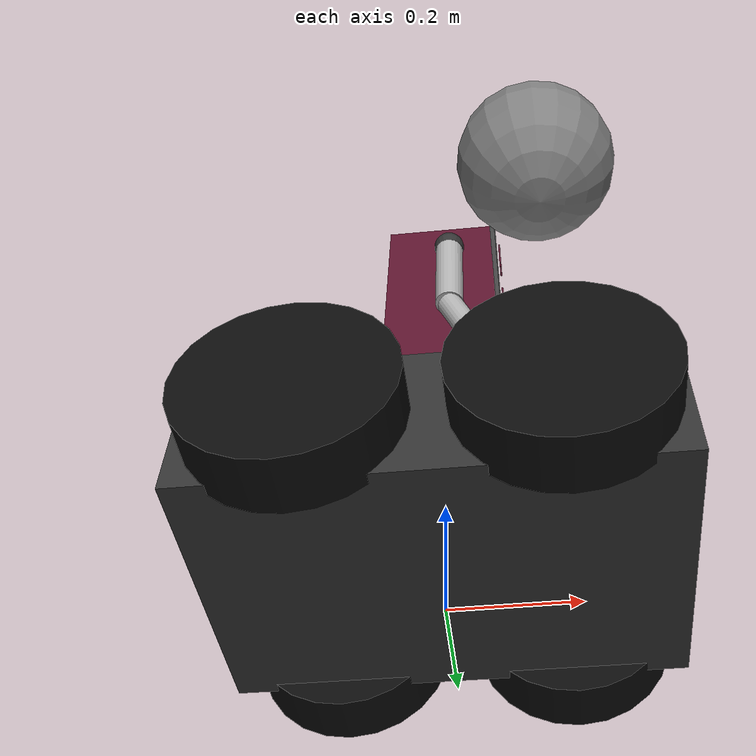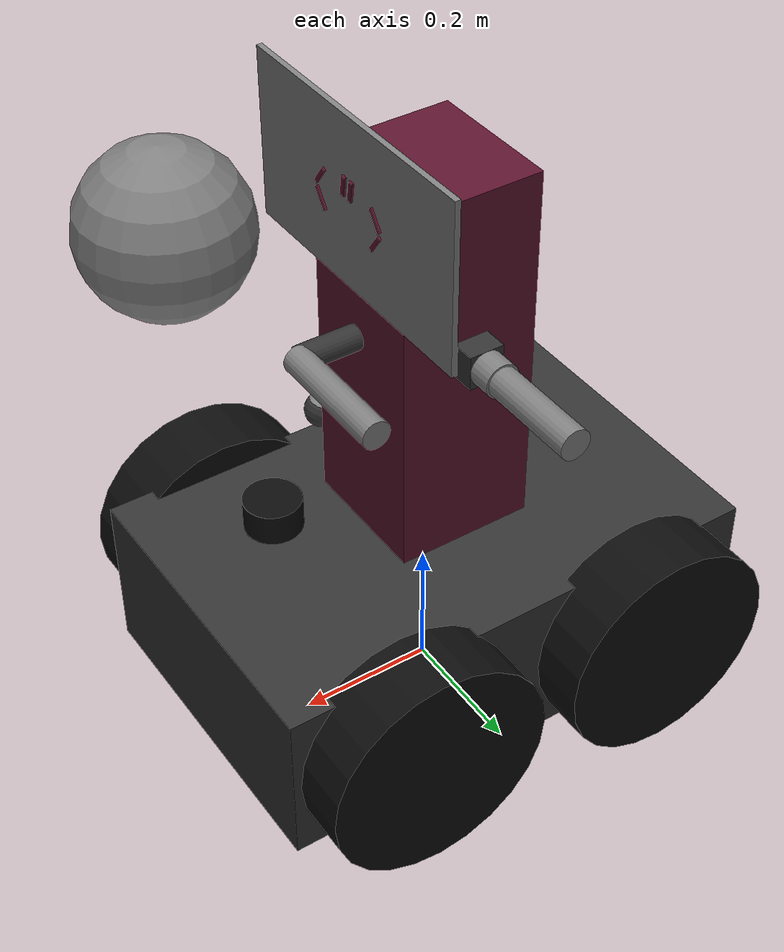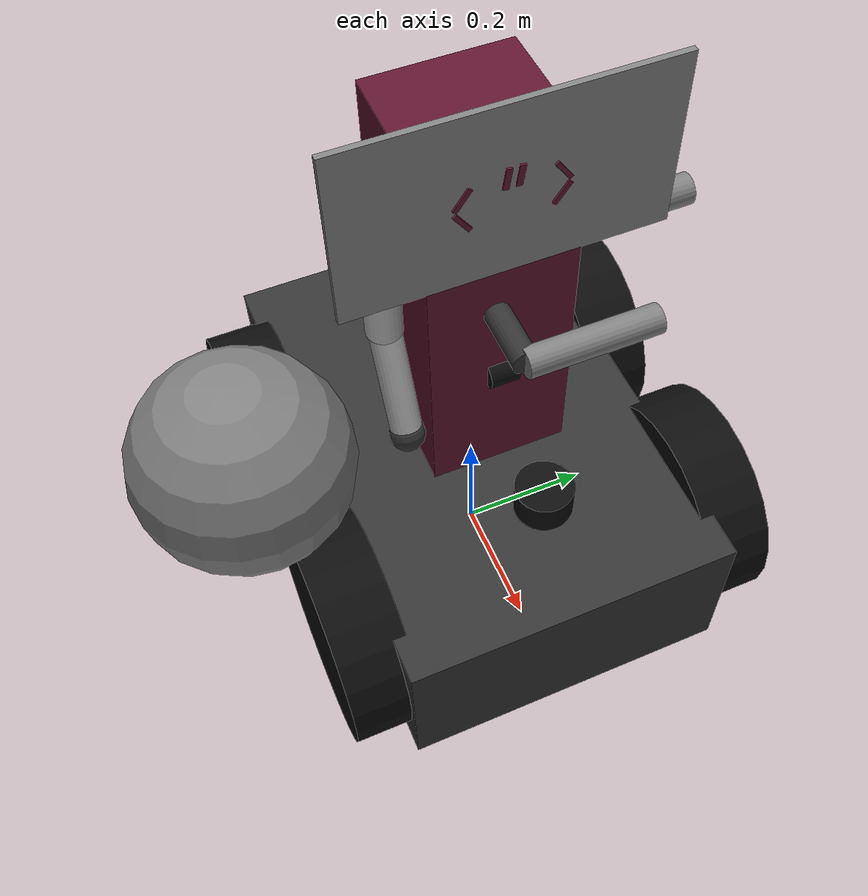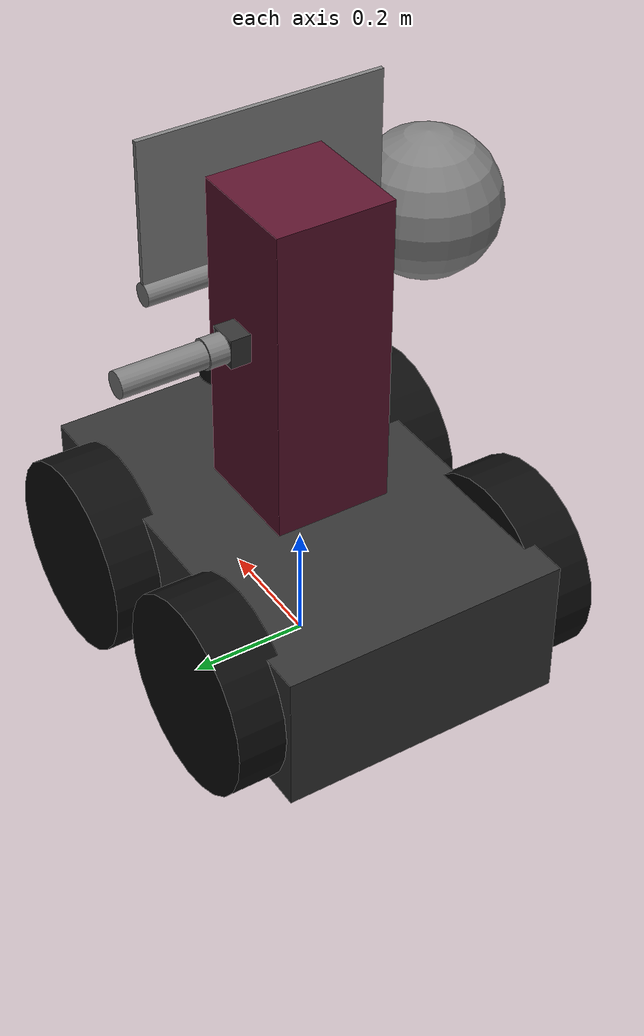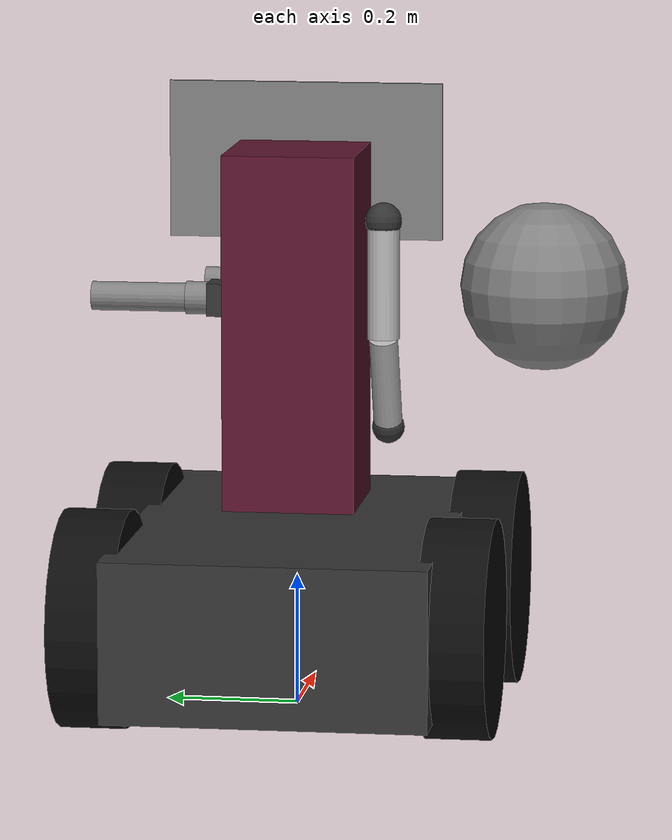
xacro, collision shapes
<?xml version="1.0"?>
<robot xmlns:xacro="http://www.ros.org/wiki/xacro" name="driftbot">

  <xacro:include filename="$(find driftbot_description)/urdf/materials.xacro"/>
  <xacro:include filename="$(find driftbot_description)/urdf/inertia_macros.xacro"/>
  <xacro:include filename="$(find driftbot_description)/urdf/base.xacro"/>
  <xacro:include filename="$(find driftbot_description)/urdf/torso.xacro"/>
  <xacro:include filename="$(find driftbot_description)/urdf/arm_active.xacro"/>
  <xacro:include filename="$(find driftbot_description)/urdf/arm_cosmetic.xacro"/>
  <xacro:include filename="$(find driftbot_description)/urdf/sensors.xacro"/>
  <xacro:include filename="$(find driftbot_description)/urdf/ros2_control.xacro"/>

  <gazebo>
    <plugin filename="gz-sim-diff-drive-system"
            name="gz::sim::systems::DiffDrive">
      <left_joint>wheel_fl_joint</left_joint>
      <left_joint>wheel_rl_joint</left_joint>
      <right_joint>wheel_fr_joint</right_joint>
      <right_joint>wheel_rr_joint</right_joint>
      <!-- track width -->
      <wheel_separation>0.55</wheel_separation>
      <wheel_radius>0.165</wheel_radius>
      <max_linear_velocity>0.8</max_linear_velocity>
      <max_angular_velocity>1.5</max_angular_velocity>
      <max_linear_acceleration>1.0</max_linear_acceleration>
      <max_angular_acceleration>2.0</max_angular_acceleration>
      <odom_publish_frequency>30</odom_publish_frequency>
      <topic>cmd_vel</topic>
      <odom_topic>odom</odom_topic>
      <!-- no gz /tf -->
      <tf_topic>tf</tf_topic>
      <frame_id>odom</frame_id>
      <child_frame_id>base_link</child_frame_id>
    </plugin>
  </gazebo>

  <gazebo>
    <plugin filename="gz-sim-joint-state-publisher-system"
            name="gz::sim::systems::JointStatePublisher">
      <topic>joint_states</topic>
    </plugin>
  </gazebo>

  <!-- arm topics -->
  <gazebo>
    <plugin filename="gz-sim-joint-position-controller-system"
            name="gz::sim::systems::JointPositionController">
      <joint_name>shoulder_joint</joint_name>
      <topic>arm_cmd_shoulder</topic>
      <p_gain>50</p_gain>
      <i_gain>0.02</i_gain>
      <d_gain>0.35</d_gain>
      <cmd_max>80</cmd_max>
      <cmd_min>-80</cmd_min>
    </plugin>
  </gazebo>
  <gazebo>
    <plugin filename="gz-sim-joint-position-controller-system"
            name="gz::sim::systems::JointPositionController">
      <joint_name>elbow_joint</joint_name>
      <topic>arm_cmd_elbow</topic>
      <p_gain>50</p_gain>
      <i_gain>0.02</i_gain>
      <d_gain>0.35</d_gain>
      <cmd_max>80</cmd_max>
      <cmd_min>-80</cmd_min>
    </plugin>
  </gazebo>
  <gazebo>
    <plugin filename="gz-sim-joint-position-controller-system"
            name="gz::sim::systems::JointPositionController">
      <joint_name>wrist_joint</joint_name>
      <topic>arm_cmd_wrist</topic>
      <p_gain>40</p_gain>
      <i_gain>0.02</i_gain>
      <d_gain>0.25</d_gain>
      <cmd_max>60</cmd_max>
      <cmd_min>-60</cmd_min>
    </plugin>
  </gazebo>

  <!-- lidar world plugin -->

  <!-- contacts -->
  <gazebo>
    <plugin filename="gz-sim-contact-system"
            name="gz::sim::systems::Contact">
    </plugin>
  </gazebo>

  <!-- pick attach -->
  <gazebo>
    <plugin filename="gz-sim-detachable-joint-system"
            name="gz::sim::systems::DetachableJoint">
      <parent_link>magnet_zone_link</parent_link>
      <child_model>can</child_model>
      <child_link>link</child_link>
      <attach_topic>/can/attach</attach_topic>
      <detach_topic>/can/detach</detach_topic>
      <detach_on_start>true</detach_on_start>
    </plugin>
    <plugin filename="gz-sim-detachable-joint-system"
            name="gz::sim::systems::DetachableJoint">
      <parent_link>magnet_zone_link</parent_link>
      <child_model>ball</child_model>
      <child_link>link</child_link>
      <attach_topic>/ball/attach</attach_topic>
      <detach_topic>/ball/detach</detach_topic>
      <detach_on_start>true</detach_on_start>
    </plugin>
    <plugin filename="gz-sim-detachable-joint-system"
            name="gz::sim::systems::DetachableJoint">
      <parent_link>magnet_zone_link</parent_link>
      <child_model>toy_block_1</child_model>
      <child_link>link</child_link>
      <attach_topic>/toy_block_1/attach</attach_topic>
      <detach_topic>/toy_block_1/detach</detach_topic>
      <detach_on_start>true</detach_on_start>
    </plugin>
    <plugin filename="gz-sim-detachable-joint-system"
            name="gz::sim::systems::DetachableJoint">
      <parent_link>magnet_zone_link</parent_link>
      <child_model>toy_block_2</child_model>
      <child_link>link</child_link>
      <attach_topic>/toy_block_2/attach</attach_topic>
      <detach_topic>/toy_block_2/detach</detach_topic>
      <detach_on_start>true</detach_on_start>
    </plugin>
    <plugin filename="gz-sim-detachable-joint-system"
            name="gz::sim::systems::DetachableJoint">
      <parent_link>magnet_zone_link</parent_link>
      <child_model>toy_cylinder_1</child_model>
      <child_link>link</child_link>
      <attach_topic>/toy_cylinder_1/attach</attach_topic>
      <detach_topic>/toy_cylinder_1/detach</detach_topic>
      <detach_on_start>true</detach_on_start>
    </plugin>
    <plugin filename="gz-sim-detachable-joint-system"
            name="gz::sim::systems::DetachableJoint">
      <parent_link>magnet_zone_link</parent_link>
      <child_model>toy_block_3</child_model>
      <child_link>link</child_link>
      <attach_topic>/toy_block_3/attach</attach_topic>
      <detach_topic>/toy_block_3/detach</detach_topic>
      <detach_on_start>true</detach_on_start>
    </plugin>

    <plugin filename="gz-sim-triggered-publisher-system"
            name="gz::sim::systems::TriggeredPublisher">
      <input type="gz.msgs.Empty" topic="/magnet_off"/>
      <output type="gz.msgs.Empty" topic="/can/detach"/>
    </plugin>
    <plugin filename="gz-sim-triggered-publisher-system"
            name="gz::sim::systems::TriggeredPublisher">
      <input type="gz.msgs.Empty" topic="/magnet_off"/>
      <output type="gz.msgs.Empty" topic="/ball/detach"/>
    </plugin>
    <plugin filename="gz-sim-triggered-publisher-system"
            name="gz::sim::systems::TriggeredPublisher">
      <input type="gz.msgs.Empty" topic="/magnet_off"/>
      <output type="gz.msgs.Empty" topic="/toy_block_1/detach"/>
    </plugin>
    <plugin filename="gz-sim-triggered-publisher-system"
            name="gz::sim::systems::TriggeredPublisher">
      <input type="gz.msgs.Empty" topic="/magnet_off"/>
      <output type="gz.msgs.Empty" topic="/toy_block_2/detach"/>
    </plugin>
    <plugin filename="gz-sim-triggered-publisher-system"
            name="gz::sim::systems::TriggeredPublisher">
      <input type="gz.msgs.Empty" topic="/magnet_off"/>
      <output type="gz.msgs.Empty" topic="/toy_cylinder_1/detach"/>
    </plugin>
    <plugin filename="gz-sim-triggered-publisher-system"
            name="gz::sim::systems::TriggeredPublisher">
      <input type="gz.msgs.Empty" topic="/magnet_off"/>
      <output type="gz.msgs.Empty" topic="/toy_block_3/detach"/>
    </plugin>
  </gazebo>

</robot>

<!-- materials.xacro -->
<robot xmlns:xacro="http://www.ros.org/wiki/xacro">

  <material name="dark_grey">
    <color rgba="0.2 0.2 0.2 1.0"/>
  </material>
  <material name="grey">
    <color rgba="0.5 0.5 0.5 1.0"/>
  </material>
  <material name="light_grey">
    <color rgba="0.7 0.7 0.7 1.0"/>
  </material>
  <material name="blue">
    <color rgba="0.13 0.37 0.68 1.0"/>
  </material>
  <material name="dark_blue">
    <color rgba="0.05 0.18 0.40 1.0"/>
  </material>
  <material name="amber">
    <color rgba="0.94 0.62 0.09 1.0"/>
  </material>
  <material name="cyan">
    <color rgba="0.0 0.8 0.8 1.0"/>
  </material>
  <material name="black">
    <color rgba="0.05 0.05 0.05 1.0"/>
  </material>
  <material name="white">
    <color rgba="0.95 0.95 0.95 1.0"/>
  </material>
  <material name="red">
    <color rgba="0.8 0.1 0.1 1.0"/>
  </material>
  <material name="green">
    <color rgba="0.1 0.6 0.2 1.0"/>
  </material>
 <material name="purple">
   <color rgba="0.5 0.0 0.5 1.0"/>
 </material>
 <material name="maroon">
  <color rgba="0.5 0.0 0.0 1.0"/>
</material>
<material name="burgundy">
  <color rgba="0.36 0.08 0.18 1.0"/>
</material>

</robot>

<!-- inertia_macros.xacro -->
<robot xmlns:xacro="http://www.ros.org/wiki/xacro">

  <xacro:macro name="inertia_box" params="m lx ly lz">
    <inertial>
      <mass value="${m}"/>
      <inertia
        ixx="${(1.0/12.0)*m*(ly*ly + lz*lz)}"
        ixy="0" ixz="0"
        iyy="${(1.0/12.0)*m*(lx*lx + lz*lz)}"
        iyz="0"
        izz="${(1.0/12.0)*m*(lx*lx + ly*ly)}"/>
    </inertial>
  </xacro:macro>

  <!-- cyl +Z -->
  <xacro:macro name="inertia_cylinder_z_at" params="m r l ox oy oz">
    <inertial>
      <origin xyz="${ox} ${oy} ${oz}" rpy="0 0 0"/>
      <mass value="${m}"/>
      <inertia
        ixx="${(1.0/12.0)*m*(3*r*r + l*l)}"
        ixy="0" ixz="0"
        iyy="${(1.0/12.0)*m*(3*r*r + l*l)}"
        iyz="0"
        izz="${0.5*m*r*r}"/>
    </inertial>
  </xacro:macro>

  <!-- cyl +X -->
  <xacro:macro name="inertia_cylinder_x_at" params="m r l ox oy oz">
    <inertial>
      <origin xyz="${ox} ${oy} ${oz}" rpy="0 0 0"/>
      <mass value="${m}"/>
      <inertia
        ixx="${0.5*m*r*r}"
        ixy="0" ixz="0"
        iyy="${(1.0/12.0)*m*(3*r*r + l*l)}"
        iyz="0"
        izz="${(1.0/12.0)*m*(3*r*r + l*l)}"/>
    </inertial>
  </xacro:macro>

  <!-- cyl +Y -->
  <xacro:macro name="inertia_cylinder_y_at" params="m r l ox oy oz">
    <inertial>
      <origin xyz="${ox} ${oy} ${oz}" rpy="0 0 0"/>
      <mass value="${m}"/>
      <inertia
        ixx="${(1.0/12.0)*m*(3*r*r + l*l)}"
        ixy="0" ixz="0"
        iyy="${0.5*m*r*r}"
        iyz="0"
        izz="${(1.0/12.0)*m*(3*r*r + l*l)}"/>
    </inertial>
  </xacro:macro>

  <xacro:macro name="inertia_cylinder" params="m r l">
    <xacro:inertia_cylinder_z_at m="${m}" r="${r}" l="${l}" ox="0" oy="0" oz="0"/>
  </xacro:macro>

  <xacro:macro name="inertia_sphere" params="m r">
    <inertial>
      <mass value="${m}"/>
      <inertia
        ixx="${(2.0/5.0)*m*r*r}" ixy="0" ixz="0"
        iyy="${(2.0/5.0)*m*r*r}" iyz="0"
        izz="${(2.0/5.0)*m*r*r}"/>
    </inertial>
  </xacro:macro>

</robot>

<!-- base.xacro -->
<robot xmlns:xacro="http://www.ros.org/wiki/xacro">

  <xacro:property name="mesh_scale"   value="0.004065 0.004065 0.004065"/>
  <xacro:property name="base_mass"    value="8.0"/>
  <xacro:property name="base_len_x"   value="0.52"/>
  <xacro:property name="base_len_y"   value="0.42"/>
  <xacro:property name="base_len_z"   value="0.10"/>
  <xacro:property name="wheel_radius" value="0.165"/>
  <xacro:property name="wheel_width"  value="0.10"/>
  <xacro:property name="wheel_mass"   value="0.5"/>
  <!-- half track -->
  <xacro:property name="wheel_track_half_y" value="0.275"/>

  <link name="base_footprint"/>

  <joint name="base_joint" type="fixed">
    <parent link="base_footprint"/>
    <child  link="base_link"/>
    <origin xyz="0.0 0.0 ${wheel_radius}" rpy="0 0 0"/>
  </joint>

  <link name="base_link">
    <visual>
      <origin xyz="0 0 0" rpy="0 0 ${pi/2}"/>
      <geometry>
        <mesh filename="package://driftbot_description/meshes/base_link.stl" scale="${mesh_scale}"/>
      </geometry>
      <material name="dark_grey"/>
    </visual>
    <collision>
      <origin xyz="0 0 0" rpy="0 0 0"/>
      <geometry><box size="${base_len_x} ${base_len_y} ${base_len_z}"/></geometry>
    </collision>
    <xacro:inertia_box m="${base_mass}" lx="${base_len_x}" ly="${base_len_y}" lz="${base_len_z}"/>
  </link>

  <gazebo reference="base_link">
    <mu1>0.8</mu1>
    <mu2>0.8</mu2>
  </gazebo>

  <link name="top_shell_link">
    <visual>
      <origin xyz="0 0 0" rpy="0 0 ${pi/2}"/>
      <geometry>
        <mesh filename="package://driftbot_description/meshes/top_shell_link.stl" scale="${mesh_scale}"/>
      </geometry>
      <material name="dark_grey"/>
    </visual>
    <collision>
      <origin xyz="0 0 0" rpy="0 0 0"/>
      <geometry><box size="0.732 0.488 0.244"/></geometry>
    </collision>
    <xacro:inertia_box m="1.324" lx="0.732" ly="0.488" lz="0.244"/>
  </link>

  <joint name="base_top_joint" type="fixed">
    <parent link="base_link"/>
    <child  link="top_shell_link"/>
    <origin xyz="0 0 0" rpy="0 0 0"/>
  </joint>

  <xacro:macro name="wheel" params="name jx jy jz vox voy voz mesh">
    <link name="wheel_${name}">
      <visual>
        <origin xyz="${vox} ${voy} ${voz}" rpy="0 0 ${pi/2}"/>
        <geometry>
          <mesh filename="package://driftbot_description/meshes/${mesh}" scale="${mesh_scale}"/>
        </geometry>
        <material name="black"/>
      </visual>
      <collision>
        <origin xyz="0 0 0" rpy="${pi/2} 0 0"/>
        <geometry>
          <cylinder radius="${wheel_radius}" length="${wheel_width}"/>
        </geometry>
      </collision>
      <xacro:inertia_cylinder_y_at m="${wheel_mass}" r="${wheel_radius}" l="${wheel_width}" ox="0" oy="0" oz="0"/>
    </link>

    <joint name="wheel_${name}_joint" type="continuous">
      <parent link="base_link"/>
      <child  link="wheel_${name}"/>
      <origin xyz="${jx} ${jy} ${jz}" rpy="0 0 0"/>
      <axis xyz="0 1 0"/>
      <dynamics damping="0.05" friction="0.1"/>
    </joint>

    <gazebo reference="wheel_${name}">
      <mu1>1.2</mu1>
      <mu2>1.2</mu2>
      <kp>1e6</kp>
      <kd>1.0</kd>
    </gazebo>
  </xacro:macro>

  <xacro:wheel name="fl" jx="0.19"  jy="${wheel_track_half_y}"  jz="0.0" vox="-0.19677" voy="-0.26422" voz="-0.01951" mesh="wheel_front_left_link.stl"/>
  <xacro:wheel name="fr" jx="0.19"  jy="-${wheel_track_half_y}" jz="0.0" vox="-0.19753" voy="0.26382" voz="-0.01951" mesh="wheel_front_right_link.stl"/>
  <xacro:wheel name="rl" jx="-0.19" jy="${wheel_track_half_y}"  jz="0.0" vox="0.19753" voy="-0.26422" voz="-0.01951" mesh="wheel_back_left_link.stl"/>
  <xacro:wheel name="rr" jx="-0.19" jy="-${wheel_track_half_y}" jz="0.0" vox="0.19677" voy="0.26382" voz="-0.01951" mesh="wheel_back_right_link.stl"/>
</robot>

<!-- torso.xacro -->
<robot xmlns:xacro="http://www.ros.org/wiki/xacro">

<xacro:property name="torso_mass"  value="5.0"/>
<xacro:property name="torso_lx"    value="0.20"/>
<xacro:property name="torso_ly"    value="0.20"/>
<xacro:property name="torso_lz"    value="0.54"/>
<xacro:property name="torso_z"     value="${base_len_z + 0.05 + torso_lz/2.0}"/>

<xacro:property name="face_mass"   value="0.15"/>
<xacro:property name="face_lx"     value="0.008"/>
<xacro:property name="face_ly"     value="0.42"/>
<xacro:property name="face_lz"     value="0.24"/>

  <link name="torso_link">
    <visual>
      <origin xyz="0 0 0" rpy="0 0 0"/>
      <geometry><box size="${torso_lx} ${torso_ly} ${torso_lz}"/></geometry>
      <material name="burgundy"/>
    </visual>
    <collision>
      <origin xyz="0 0 0" rpy="0 0 0"/>
      <geometry><box size="${torso_lx} ${torso_ly} ${torso_lz}"/></geometry>
    </collision>
    <xacro:inertia_box m="${torso_mass}" lx="${torso_lx}" ly="${torso_ly}" lz="${torso_lz}"/>
  </link>

  <joint name="torso_joint" type="fixed">
    <parent link="base_link"/>
    <child  link="torso_link"/>
    <origin xyz="0.0 0.0 ${torso_z}" rpy="0 0 0"/>
  </joint>

  <link name="face_panel_link">
    <visual>
      <origin xyz="0 0 0" rpy="0 0 0"/>
      <geometry><box size="${face_lx} ${face_ly} ${face_lz}"/></geometry>
      <material name="grey"/>
    </visual>
    <collision>
      <origin xyz="0 0 0" rpy="0 0 0"/>
      <geometry><box size="${face_lx} ${face_ly} ${face_lz}"/></geometry>
    </collision>
    <xacro:inertia_box m="${face_mass}" lx="${face_lx}" ly="${face_ly}" lz="${face_lz}"/>
  </link>

<joint name="face_panel_joint" type="fixed">
  <parent link="torso_link"/>
  <child  link="face_panel_link"/>
  <origin xyz="${torso_lx/2.0 + face_lx/2.0} 0.0 0.24" rpy="0 0 0"/>
</joint>
<!-- xml escape -->
<link name="glyph_lt_top_link">
  <visual>
    <origin xyz="0 0 0" rpy="0 0 0"/>
    <geometry><box size="0.003 0.032 0.006"/></geometry>
    <material name="burgundy"/>
  </visual>
  <collision>
    <origin xyz="0 0 0" rpy="0 0 0"/>
    <geometry><box size="0.003 0.032 0.006"/></geometry>
  </collision>
  <xacro:inertia_box m="0.0015" lx="0.003" ly="0.032" lz="0.006"/>
</link>
<joint name="glyph_lt_top_joint" type="fixed">
  <parent link="face_panel_link"/>
  <child  link="glyph_lt_top_link"/>
  <origin xyz="0.010 0.060 0.016" rpy="-0.95 0 0"/>
</joint>

<link name="glyph_lt_bottom_link">
  <visual>
    <origin xyz="0 0 0" rpy="0 0 0"/>
    <geometry><box size="0.003 0.032 0.006"/></geometry>
    <material name="burgundy"/>
  </visual>
  <collision>
    <origin xyz="0 0 0" rpy="0 0 0"/>
    <geometry><box size="0.003 0.032 0.006"/></geometry>
  </collision>
  <xacro:inertia_box m="0.0015" lx="0.003" ly="0.032" lz="0.006"/>
</link>
<joint name="glyph_lt_bottom_joint" type="fixed">
  <parent link="face_panel_link"/>
  <child  link="glyph_lt_bottom_link"/>
  <origin xyz="0.010 0.060 -0.016" rpy="0.95 0 0"/>
</joint>

<link name="glyph_quote_left_link">
  <visual>
    <origin xyz="0 0 0" rpy="0 0 0"/>
    <geometry><box size="0.003 0.008 0.028"/></geometry>
    <material name="burgundy"/>
  </visual>
  <collision>
    <origin xyz="0 0 0" rpy="0 0 0"/>
    <geometry><box size="0.003 0.008 0.028"/></geometry>
  </collision>
  <xacro:inertia_box m="0.0015" lx="0.003" ly="0.008" lz="0.028"/>
</link>
<joint name="glyph_quote_left_joint" type="fixed">
  <parent link="face_panel_link"/>
  <child  link="glyph_quote_left_link"/>
  <origin xyz="0.010 0.008 0.028" rpy="-0.15 0 0"/>
</joint>

<link name="glyph_quote_right_link">
  <visual>
    <origin xyz="0 0 0" rpy="0 0 0"/>
    <geometry><box size="0.003 0.008 0.028"/></geometry>
    <material name="burgundy"/>
  </visual>
  <collision>
    <origin xyz="0 0 0" rpy="0 0 0"/>
    <geometry><box size="0.003 0.008 0.028"/></geometry>
  </collision>
  <xacro:inertia_box m="0.0015" lx="0.003" ly="0.008" lz="0.028"/>
</link>
<joint name="glyph_quote_right_joint" type="fixed">
  <parent link="face_panel_link"/>
  <child  link="glyph_quote_right_link"/>
  <origin xyz="0.010 -0.008 0.028" rpy="-0.15 0 0"/>
</joint>

<link name="glyph_gt_top_link">
  <visual>
    <origin xyz="0 0 0" rpy="0 0 0"/>
    <geometry><box size="0.003 0.032 0.006"/></geometry>
    <material name="burgundy"/>
  </visual>
  <collision>
    <origin xyz="0 0 0" rpy="0 0 0"/>
    <geometry><box size="0.003 0.032 0.006"/></geometry>
  </collision>
  <xacro:inertia_box m="0.0015" lx="0.003" ly="0.032" lz="0.006"/>
</link>
<joint name="glyph_gt_top_joint" type="fixed">
  <parent link="face_panel_link"/>
  <child  link="glyph_gt_top_link"/>
  <origin xyz="0.010 -0.060 0.016" rpy="0.95 0 0"/>
</joint>

<link name="glyph_gt_bottom_link">
  <visual>
    <origin xyz="0 0 0" rpy="0 0 0"/>
    <geometry><box size="0.003 0.032 0.006"/></geometry>
      <material name="burgundy"/>
  </visual>
  <collision>
    <origin xyz="0 0 0" rpy="0 0 0"/>
    <geometry><box size="0.003 0.032 0.006"/></geometry>
  </collision>
  <xacro:inertia_box m="0.0015" lx="0.003" ly="0.032" lz="0.006"/>
</link>
<joint name="glyph_gt_bottom_joint" type="fixed">
  <parent link="face_panel_link"/>
  <child  link="glyph_gt_bottom_link"/>
  <origin xyz="0.010 -0.060 -0.016" rpy="-0.95 0 0"/>
</joint>

</robot>

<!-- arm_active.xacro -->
<robot xmlns:xacro="http://www.ros.org/wiki/xacro">

  <xacro:property name="arm_scale" value="0.0018 0.0018 0.0018"/>
  <xacro:property name="l1_visual_xyz" value="0 0 -0.0481"/>
  <xacro:property name="l2_visual_xyz" value="0 0 0"/>
  <xacro:property name="l3_visual_xyz" value="0.08169 0.00595 0.00146"/>
  <xacro:property name="l4_visual_xyz" value="0 0.20 0"/>

  <xacro:property name="shoulder_joint_xyz" value="0 0 0.06858"/>
  <xacro:property name="elbow_joint_xyz" value="0 0 0"/>
  <xacro:property name="forearm_tip_xyz" value="0 -0.185 0"/>
  <xacro:property name="wrist_tip_xyz" value="0.17751 0 0"/>
  <xacro:property name="magnet_gripper_xyz" value="0 0.35 0"/>
  <!-- magnet R -->
  <xacro:property name="magnet_radius" value="0.13"/>
  <xacro:property name="magnet_visual_radius" value="0.13"/>

  <!-- home rad ref -->
  <xacro:property name="arm_home_shoulder" value="0.38"/>
  <xacro:property name="arm_home_elbow" value="-0.88"/>
  <xacro:property name="arm_home_wrist" value="0.06"/>

  <!-- arm base -->
  <link name="arm_base_link">
    <visual>
      <origin xyz="0 0 0" rpy="0 0 0"/>
      <geometry>
        <mesh filename="package://driftbot_description/meshes/base.stl" scale="${arm_scale}"/>
      </geometry>
      <material name="dark_grey"/>
    </visual>
    <collision>
      <origin xyz="0 0 0" rpy="0 0 0"/>
      <geometry><box size="0.05 0.05 0.07"/></geometry>
    </collision>
    <xacro:inertia_box m="0.092" lx="0.05" ly="0.05" lz="0.07"/>
  </link>

  <joint name="arm_base_joint" type="fixed">
  <parent link="torso_link"/>
  <child  link="arm_base_link"/>
  <origin xyz="0.0 ${torso_ly/2.0} 0.04" rpy="-1.5708 0 0"/>
</joint>

  <!-- shoulder -->
  <link name="upper_arm_link">
    <visual>
      <origin xyz="${l1_visual_xyz}" rpy="0 0 0"/>
      <geometry>
        <mesh filename="package://driftbot_description/meshes/link1.stl" scale="${arm_scale}"/>
      </geometry>
      <material name="grey"/>
    </visual>
    <collision>
      <origin xyz="0 0 0.05" rpy="0 0 0"/>
      <geometry><cylinder radius="0.025" length="0.10"/></geometry>
    </collision>
    <xacro:inertia_cylinder_z_at m="0.187" r="0.025" l="0.10" ox="0" oy="0" oz="0.05"/>
  </link>

  <joint name="shoulder_joint" type="revolute">
    <parent link="arm_base_link"/>
    <child  link="upper_arm_link"/>
    <origin xyz="${shoulder_joint_xyz}" rpy="0 3.14159 0"/>
    <axis xyz="0 0 1"/>
    <!-- limit inboard -->
    <limit lower="-0.18" upper="1.48" effort="20.0" velocity="1.0"/>
    <dynamics damping="1.2" friction="0.35"/>
  </joint>

  <!-- elbow -->
  <link name="forearm_link">
    <visual>
      <origin xyz="${l2_visual_xyz}" rpy="0 0 -1.5708"/>
      <geometry>
        <mesh filename="package://driftbot_description/meshes/link2.stl" scale="${arm_scale}"/>
      </geometry>
      <material name="grey"/>
    </visual>
    <collision>
      <origin xyz="0.07 0 0" rpy="0 1.5708 0"/>
      <geometry><cylinder radius="0.022" length="0.15"/></geometry>
    </collision>
    <xacro:inertia_cylinder_x_at m="0.044" r="0.022" l="0.15" ox="0.07" oy="0" oz="0"/>
  </link>

  <joint name="elbow_joint" type="revolute">
    <parent link="upper_arm_link"/>
    <child  link="forearm_link"/>
    <origin xyz="${elbow_joint_xyz}" rpy="0 1.5708 -1.5708"/>
    <axis xyz="0 0 1"/>
    <!-- no self-hit -->
    <limit lower="-2.05" upper="0.12" effort="15.0" velocity="1.0"/>
    <dynamics damping="1.0" friction="0.28"/>
  </joint>

  <!-- wrist -->
<link name="wrist_link">
  <visual>
    <origin xyz="${l3_visual_xyz}" rpy="0 0 -0.0427"/>
    <geometry>
      <mesh filename="package://driftbot_description/meshes/link3.stl" scale="${arm_scale}"/>
    </geometry>
    <material name="grey"/>
  </visual>
  <collision>
    <origin xyz="0.09 0 0" rpy="0 1.5708 0"/>
    <geometry><cylinder radius="0.020" length="0.18"/></geometry>
  </collision>
  <xacro:inertia_cylinder_x_at m="0.207" r="0.020" l="0.18" ox="0.09" oy="0" oz="0"/>
</link>

<joint name="wrist_joint" type="revolute">
  <parent link="forearm_link"/>
  <child  link="wrist_link"/>
  <origin xyz="${forearm_tip_xyz}" rpy="0 3.14159 0"/>
  <axis xyz="0 0 1"/>
  <limit lower="-0.95" upper="1.15" effort="8.0" velocity="1.5"/>
  <dynamics damping="0.55" friction="0.18"/>
</joint>

  <!-- gripper -->
  <link name="gripper_link">
    <visual>
      <origin xyz="${l4_visual_xyz}" rpy="0 0 1.5281"/>
      <geometry>
        <mesh filename="package://driftbot_description/meshes/link4.stl" scale="${arm_scale}"/>
      </geometry>
      <material name="dark_grey"/>
    </visual>
    <collision>
      <origin xyz="0.05 0 0" rpy="0 1.5708 0"/>
      <geometry><cylinder radius="0.018" length="0.10"/></geometry>
    </collision>
    <xacro:inertia_cylinder_x_at m="0.081" r="0.018" l="0.10" ox="0.05" oy="0" oz="0"/>
  </link>

  <joint name="gripper_joint" type="fixed">
    <parent link="wrist_link"/>
    <child  link="gripper_link"/>
    <origin xyz="${wrist_tip_xyz}" rpy="3.14159 0 1.5708"/>
  </joint>

  <link name="magnet_zone_link">
    <visual>
      <origin xyz="0 0 0" rpy="0 0 0"/>
      <geometry>
        <sphere radius="${magnet_visual_radius}"/>
      </geometry>
      <material name="grey"/>
    </visual>
    <collision name="magnet_zone_collision">
      <origin xyz="0 0 0" rpy="0 0 0"/>
      <geometry>
        <sphere radius="${magnet_radius}"/>
      </geometry>
    </collision>
    <xacro:inertia_sphere m="0.001" r="${magnet_radius}"/>
  </link>

  <joint name="magnet_zone_joint" type="fixed">
    <parent link="gripper_link"/>
    <child  link="magnet_zone_link"/>
    <origin xyz="${magnet_gripper_xyz}" rpy="0 0 0"/>
  </joint>

  <!-- magnet sdf -->
  <gazebo reference="magnet_zone_joint">
    <preserveFixedJoint>true</preserveFixedJoint>
  </gazebo>

  <gazebo reference="magnet_zone_link">
    <turnGravityOff>true</turnGravityOff>
    <sensor name="magnet_zone_contact" type="contact">
      <always_on>true</always_on>
      <update_rate>30</update_rate>
      <contact>
        <collision>magnet_zone_collision</collision>
      </contact>
    </sensor>
  </gazebo>

  <gazebo reference="arm_base_link">
    <turnGravityOff>true</turnGravityOff>
  </gazebo>
  <gazebo reference="upper_arm_link">
    <turnGravityOff>true</turnGravityOff>
  </gazebo>
  <gazebo reference="forearm_link">
    <turnGravityOff>true</turnGravityOff>
  </gazebo>
  <gazebo reference="wrist_link">
    <turnGravityOff>true</turnGravityOff>
  </gazebo>
  <gazebo reference="gripper_link">
    <turnGravityOff>true</turnGravityOff>
  </gazebo>

</robot>

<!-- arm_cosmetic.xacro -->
<robot xmlns:xacro="http://www.ros.org/wiki/xacro">

  <link name="cosm_shoulder_cap_link">
    <visual>
      <origin xyz="0 0 0" rpy="0 0 0"/>
      <geometry><sphere radius="0.028"/></geometry>
      <material name="dark_grey"/>
    </visual>
    <collision>
      <origin xyz="0 0 0" rpy="0 0 0"/>
      <geometry><sphere radius="0.028"/></geometry>
    </collision>
    <xacro:inertia_sphere m="0.03" r="0.028"/>
  </link>

<joint name="cosm_shoulder_cap_joint" type="fixed">
  <parent link="torso_link"/>
  <child  link="cosm_shoulder_cap_link"/>
  <origin xyz="0.02 -0.13 0.16" rpy="0 0 0"/>
</joint>

<joint name="cosm_shoulder_joint" type="fixed">
  <parent link="torso_link"/>
  <child  link="cosm_upper_arm_link"/>
  <origin xyz="0.02 -0.13 0.16" rpy="0 0 0"/>
</joint>

<joint name="cosm_elbow_joint" type="fixed">
  <parent link="cosm_upper_arm_link"/>
  <child  link="cosm_forearm_link"/>
  <origin xyz="0 0 -0.18" rpy="0 -0.4 0"/>
</joint>

  <link name="cosm_upper_arm_link">
    <visual>
      <origin xyz="0 0 -0.09" rpy="0 0 0"/>
      <geometry><cylinder radius="0.025" length="0.18"/></geometry>
      <material name="light_grey"/>
    </visual>
    <collision>
      <origin xyz="0 0 -0.09" rpy="0 0 0"/>
      <geometry><cylinder radius="0.025" length="0.18"/></geometry>
    </collision>
    <xacro:inertia_cylinder_z_at m="0.30" r="0.025" l="0.18" ox="0" oy="0" oz="-0.09"/>
  </link>

  <link name="cosm_forearm_link">
    <visual>
      <origin xyz="0 0 -0.08" rpy="0 0 0"/>
      <geometry><cylinder radius="0.022" length="0.16"/></geometry>
      <material name="light_grey"/>
    </visual>
    <collision>
      <origin xyz="0 0 -0.08" rpy="0 0 0"/>
      <geometry><cylinder radius="0.022" length="0.16"/></geometry>
    </collision>
    <xacro:inertia_cylinder_z_at m="0.20" r="0.022" l="0.16" ox="0" oy="0" oz="-0.08"/>
  </link>

  <link name="cosm_end_link">
    <visual>
      <origin xyz="0 0 0" rpy="0 0 0"/>
      <geometry><sphere radius="0.025"/></geometry>
      <material name="dark_grey"/>
    </visual>
    <collision>
      <origin xyz="0 0 0" rpy="0 0 0"/>
      <geometry><sphere radius="0.025"/></geometry>
    </collision>
    <xacro:inertia_sphere m="0.05" r="0.025"/>
  </link>

  <joint name="cosm_wrist_joint" type="fixed">
    <parent link="cosm_forearm_link"/>
    <child  link="cosm_end_link"/>
    <origin xyz="0 0 -0.16" rpy="0 0 0"/>
  </joint>

  <gazebo reference="cosm_shoulder_cap_link">
    <turnGravityOff>true</turnGravityOff>
  </gazebo>
  <gazebo reference="cosm_upper_arm_link">
    <turnGravityOff>true</turnGravityOff>
  </gazebo>
  <gazebo reference="cosm_forearm_link">
    <turnGravityOff>true</turnGravityOff>
  </gazebo>
  <gazebo reference="cosm_end_link">
    <turnGravityOff>true</turnGravityOff>
  </gazebo>

</robot>

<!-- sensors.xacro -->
<robot xmlns:xacro="http://www.ros.org/wiki/xacro">
<link name="camera_link">
  <visual>
    <origin xyz="0 0 0" rpy="${pi/2} 0 0"/>
    <geometry><cylinder radius="0.020" length="0.040"/></geometry>
    <material name="black"/>
  </visual>
  <collision>
    <origin xyz="0 0 0" rpy="${pi/2} 0 0"/>
    <geometry><cylinder radius="0.020" length="0.040"/></geometry>
  </collision>
  <xacro:inertia_cylinder_y_at m="0.08" r="0.020" l="0.040" ox="0" oy="0" oz="0"/>
</link>

  <link name="camera_optical_link"/>

  <joint name="camera_joint" type="fixed">
    <parent link="torso_link"/>
    <child  link="camera_link"/>
    <origin xyz="0.095 0.0 -0.08" rpy="0 0 0"/>
  </joint>

  <joint name="camera_optical_joint" type="fixed">
    <parent link="camera_link"/>
    <child  link="camera_optical_link"/>
    <origin xyz="0 0 0" rpy="${-pi/2} 0 ${-pi/2}"/>
  </joint>

  <gazebo reference="camera_link">
    <sensor name="driftbot_camera" type="camera">
      <always_on>true</always_on>
      <update_rate>30</update_rate>
      <visualize>true</visualize>
      <topic>/camera/image_raw</topic>
      <camera>
        <!-- ogre mask -->
        <visibility_mask>268435455</visibility_mask>
        <horizontal_fov>1.047</horizontal_fov>
        <image>
          <width>640</width>
          <height>480</height>
          <format>R8G8B8</format>
        </image>
        <clip>
          <near>0.05</near>
          <far>10.0</far>
        </clip>
      </camera>
    </sensor>
  </gazebo>

  <link name="lidar_link">
    <visual>
      <origin xyz="0 0 0" rpy="0 0 0"/>
      <geometry><cylinder radius="0.040" length="0.045"/></geometry>
      <material name="black"/>
    </visual>
    <collision>
      <origin xyz="0 0 0" rpy="0 0 0"/>
      <geometry><cylinder radius="0.040" length="0.045"/></geometry>
    </collision>
    <xacro:inertia_cylinder m="0.18" r="0.040" l="0.045"/>
  </link>

<joint name="lidar_joint" type="fixed">
  <parent link="base_link"/>
  <child  link="lidar_link"/>
  <origin xyz="0.239 0.0 0.24" rpy="0 0 0"/>
</joint>

  <!-- 2d scan -->
  <gazebo reference="lidar_link">
    <sensor name="driftbot_lidar" type="gpu_lidar">
      <always_on>true</always_on>
      <update_rate>10</update_rate>
      <visualize>true</visualize>
      <topic>/scan</topic>
      <lidar>
        <visibility_mask>268435455</visibility_mask>
        <scan>
          <horizontal>
            <samples>360</samples>
            <resolution>1</resolution>
            <min_angle>-3.14159</min_angle>
            <max_angle>3.14159</max_angle>
          </horizontal>
        </scan>
        <range>
          <min>0.12</min>
          <max>8.0</max>
          <resolution>0.01</resolution>
        </range>
      </lidar>
    </sensor>
  </gazebo>

</robot>
